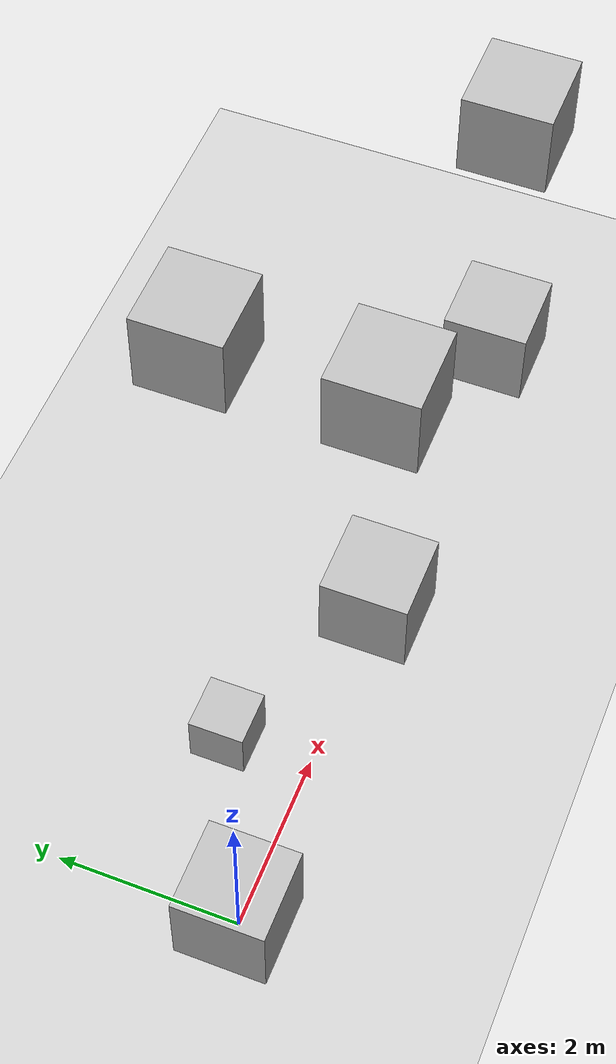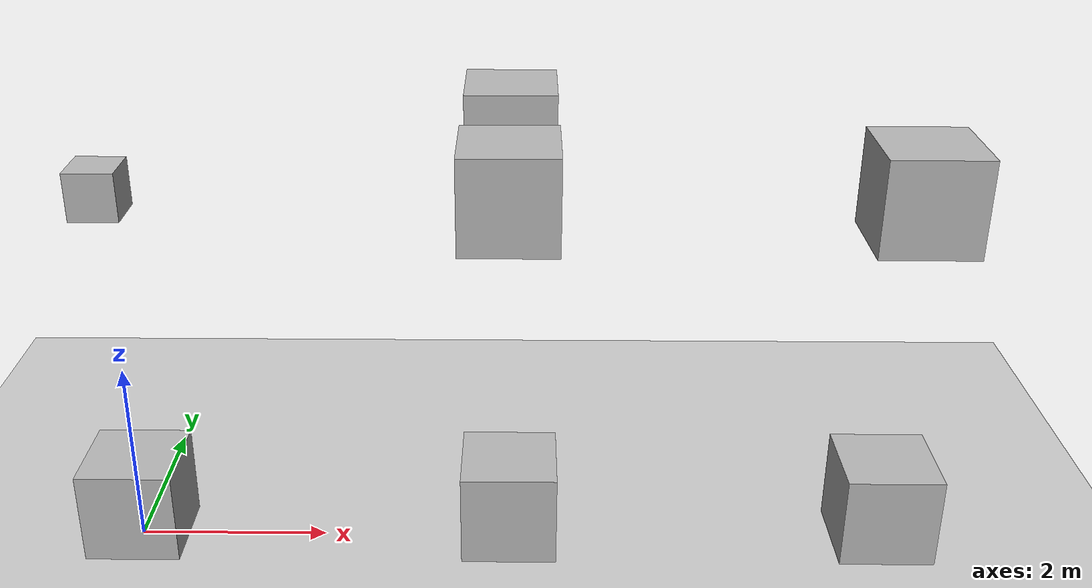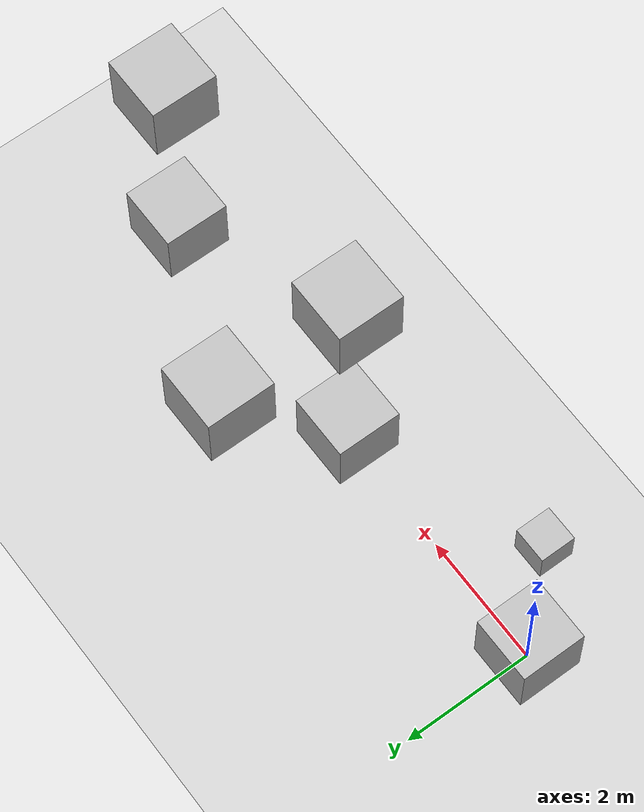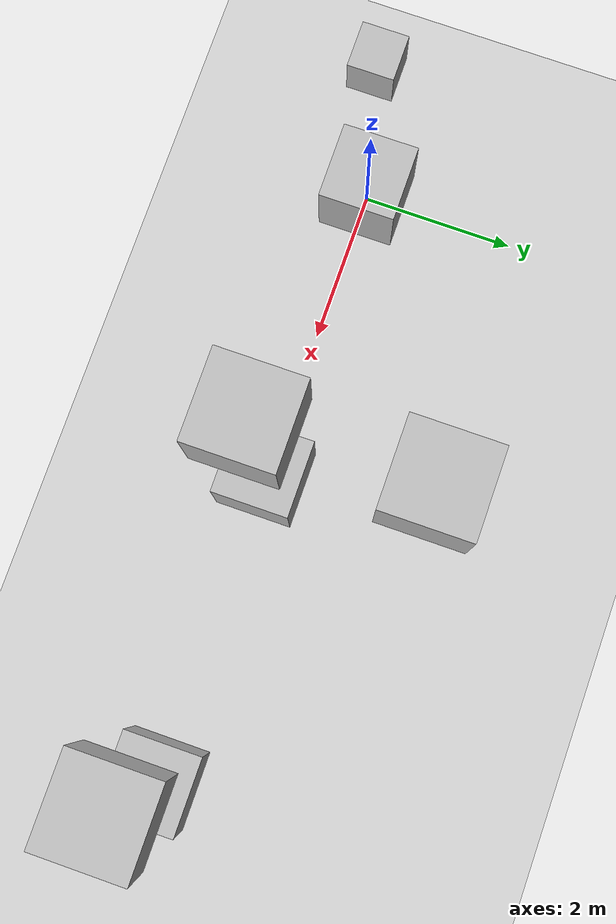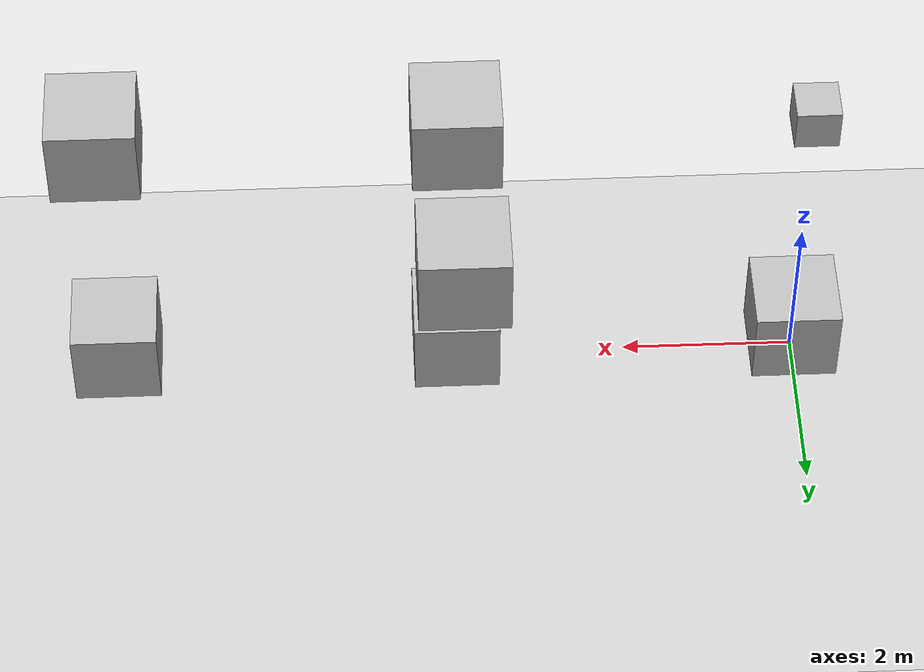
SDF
<?xml version="1.0" ?>
<sdf version="1.6">
  <world name="touch">
    <physics name="fast" type="ignored">
      <real_time_factor>0</real_time_factor>
    </physics>

    <plugin
      filename="gz-sim-physics-system"
      name="gz::sim::systems::Physics">
    </plugin>
    <plugin
      filename="gz-sim-contact-system"
      name="gz::sim::systems::Contact">
    </plugin>
    <plugin
      filename="gz-sim-scene-broadcaster-system"
      name="gz::sim::systems::SceneBroadcaster">
    </plugin>

    <model name="ground_plane">
      <static>true</static>
      <link name="link">
        <collision name="collision">
          <geometry>
            <plane>
              <normal>0 0 1</normal>
              <size>100 100</size>
            </plane>
          </geometry>
        </collision>
        <visual name="visual">
          <geometry>
            <plane>
              <normal>0 0 1</normal>
              <size>100 100</size>
            </plane>
          </geometry>
        </visual>
      </link>
    </model>

    <model name="white_box">
      <pose>0 0 4 0 0 0</pose>
      <link name="link">
        <collision name="collision">
          <geometry>
            <box>
              <size>0.5 0.5 0.5</size>
            </box>
          </geometry>
        </collision>
        <visual name="visual">
          <geometry>
            <box>
              <size>0.5 0.5 0.5</size>
            </box>
          </geometry>
        </visual>
        <sensor name="white_box_sensor" type="contact">
          <contact>
            <collision>collision</collision>
          </contact>
        </sensor>
      </link>
      <plugin
        filename="gz-sim-touchplugin-system"
        name="gz::sim::systems::TouchPlugin">
        <target>green_box_for_white</target>
        <time>3</time>
        <namespace>white_touches_only_green</namespace>
        <enabled>true</enabled>
      </plugin>
    </model>

    <model name="red_yellow_box">
      <pose>4 0 4 0 0 0</pose>
      <link name="red">
        <collision name="collision">
          <geometry>
            <box>
              <size>1 1 1</size>
            </box>
          </geometry>
        </collision>
        <visual name="visual">
          <geometry>
            <box>
              <size>1 1 1</size>
            </box>
          </geometry>
        </visual>
        <sensor name="red_box_sensor" type="contact">
          <contact>
            <collision>collision</collision>
          </contact>
        </sensor>
      </link>
      <link name="yellow">
        <pose>0 2 0 0 0 0</pose>
        <collision name="collision">
          <geometry>
            <box>
              <size>1 1 1</size>
            </box>
          </geometry>
        </collision>
        <visual name="visual">
          <geometry>
            <box>
              <size>1 1 1</size>
            </box>
          </geometry>
        </visual>
        <sensor name="yellow_box_sensor" type="contact">
          <contact>
            <collision>collision</collision>
          </contact>
        </sensor>
      </link>
      <plugin
        filename="gz-sim-touchplugin-system"
        name="gz::sim::systems::TouchPlugin">
        <target>green_box_for_red_yellow</target>
        <time>2</time>
        <namespace>red_and_yellow_touch_only_green</namespace>
        <enabled>true</enabled>
      </plugin>
    </model>

    <model name="blue_box">
      <pose>8 0 4 0 0 0</pose>
      <link name="link">
        <collision name="collision">
          <geometry>
            <box>
              <size>1 1 1</size>
            </box>
          </geometry>
        </collision>
        <visual name="visual">
          <geometry>
            <box>
              <size>1 1 1</size>
            </box>
          </geometry>
        </visual>
        <sensor name="blue_box_sensor" type="contact">
          <contact>
            <collision>collision</collision>
          </contact>
        </sensor>
      </link>
      <plugin
        filename="gz-sim-touchplugin-system"
        name="gz::sim::systems::TouchPlugin">
        <target>green_box_for_blue</target>
        <time>2</time>
        <namespace>blue_touches_only_green</namespace>
      </plugin>
    </model>

    <model name="green_box_for_white">
      <pose>0 0 0.5 0 0 0</pose>
      <link name="link">
        <collision name="collision">
          <geometry>
            <box>
              <size>1 1 1</size>
            </box>
          </geometry>
        </collision>
        <visual name="visual">
          <geometry>
            <box>
              <size>1 1 1</size>
            </box>
          </geometry>
        </visual>
      </link>
    </model>

    <model name="green_box_for_red_yellow">
      <pose>4 0 0.5 0 0 0</pose>
      <link name="link">
        <collision name="collision">
          <geometry>
            <box>
              <size>1 1 1</size>
            </box>
          </geometry>
        </collision>
        <visual name="visual">
          <geometry>
            <box>
              <size>1 1 1</size>
            </box>
          </geometry>
        </visual>
      </link>
    </model>

    <model name="green_box_for_blue">
      <pose>8 0 0.5 0 0 0</pose>
      <link name="link">
        <collision name="collision">
          <geometry>
            <box>
              <size>1 1 1</size>
            </box>
          </geometry>
        </collision>
        <visual name="visual">
          <geometry>
            <box>
              <size>1 1 1</size>
            </box>
          </geometry>
        </visual>
      </link>
    </model>
  </world>
</sdf>
